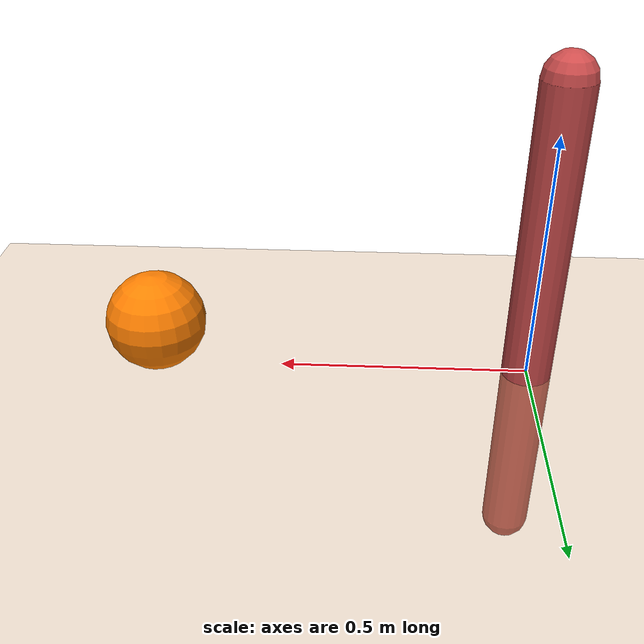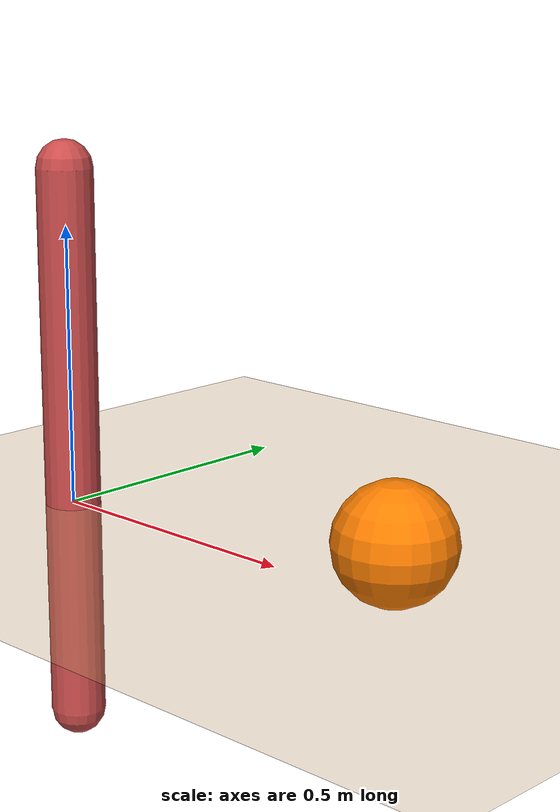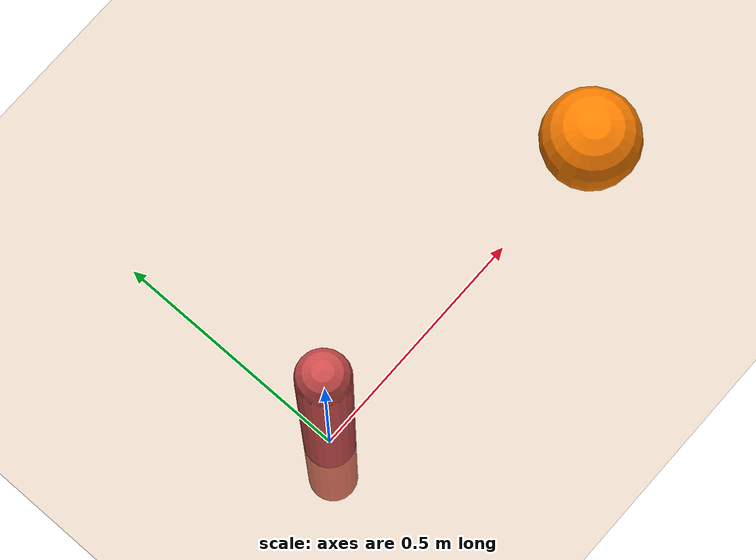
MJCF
<?xml version="1.0" encoding="UTF-8"?>
<mujoco model="heat_expansion_rod">
    <compiler angle="radian" coordinate="local" inertiafromgeom="true"/>
    <option timestep="0.01" integrator="RK4" gravity="0 0 -9.81"/>

    <default>
        <joint limited="true" damping="1" armature="0.01"/>
        <geom conaffinity="0" condim="3" contype="1" margin="0.01" friction="0.5 0.3 0.3" rgba="0.8 0.6 0.4 1"/>
    </default>

    <asset>
        <texture type="skybox" builtin="gradient" rgb1="0.3 0.5 0.7" rgb2="0 0 0" width="512" height="512"/>
        <texture name="texplane" type="2d" builtin="checker" rgb1=".2 .3 .4" rgb2=".1 .2 .3" width="512" height="512" mark="cross" markrgb=".8 .8 .8"/>
        <material name="matplane" reflectance="0.3" texture="texplane" texrepeat="1 1" texuniform="true"/>
    </asset>

    <worldbody>
        <light directional="true" diffuse=".6 .6 .6" specular="0.2 0.2 0.2" pos="0 0 1" dir="0 0 -1"/>
        <geom name="floor" pos="0 0 0" size="5 5 0.125" type="plane" material="matplane" condim="3"/>

        <body name="rod" pos="0 0 0.1">
            <joint type="free"/>
            <geom name="rod_geom" type="capsule" size="0.05 0.5" rgba="0.8 0.3 0.3 1"/>
        </body>

        <body name="heat_source" pos="0.75 0 0.1">
            <geom name="heat_source_geom" type="sphere" size="0.1" rgba="1 0.5 0 1"/>
            <site name="heat_site" pos="0 0 0" size="0.01"/>
        </body>
    </worldbody>

    <sensor>
        <user name="temperature_sensor" objtype="site" objname="heat_site" dim="1"/>
    </sensor>
</mujoco>
